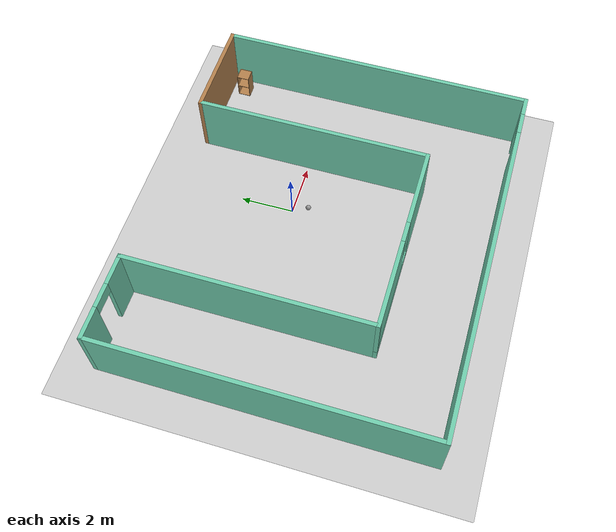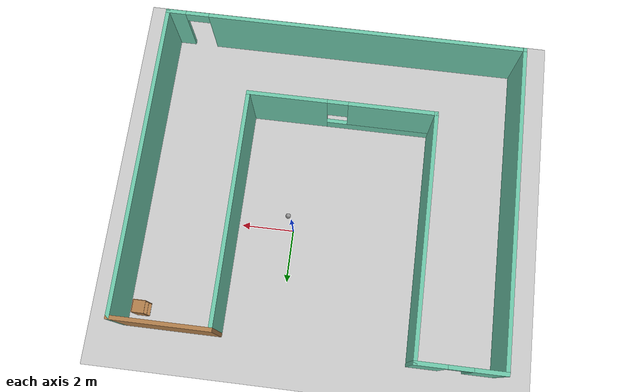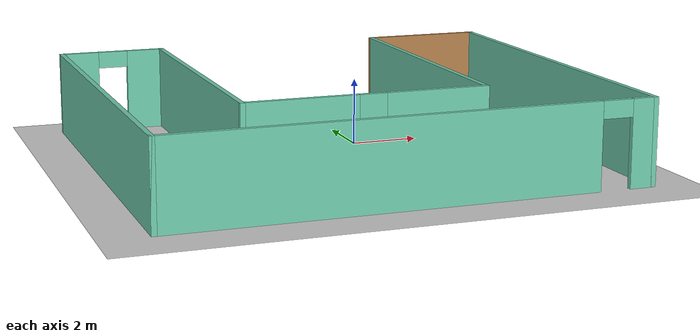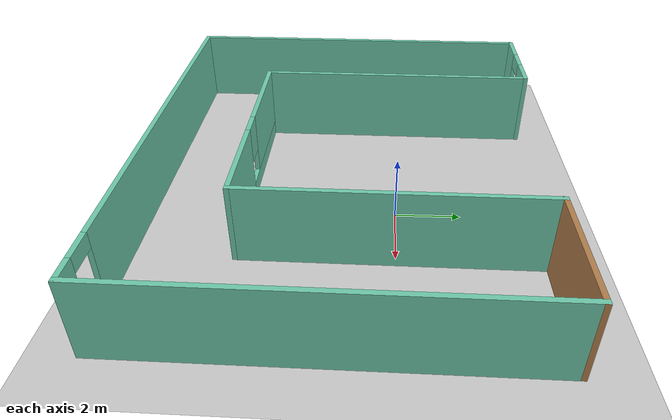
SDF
<sdf version="1.6">
 <world name="default">
  <plugin name="hello" filename="libhello.so"/>
  <light name="sun" type="directional">
   <pose>0 0 10 0 -0 0</pose>
   <diffuse>0.8 0.8 0.8 1</diffuse>
   <specular>0.2 0.2 0.2 1</specular>
   <attenuation>
    <range>1000</range>
    <constant>0.9</constant>
    <linear>0.01</linear>
    <quadratic>0.001</quadratic>
   </attenuation>
   <direction>-0.5 0.1 -0.9</direction>
  </light>
  <model name="ground_plane">
   <static>1</static>
   <link name="link">
    <collision name="collision">
     <geometry><plane><normal>0 0 1</normal><size>100 100</size></plane></geometry>
     <surface>
      <contact><collide_bitmask>65535</collide_bitmask></contact>
      <friction><ode><mu>100</mu><mu2>50</mu2></ode></friction>
     </surface>
    </collision>
    <visual name="visual">
     <cast_shadows>0</cast_shadows>
     <geometry><plane><normal>0 0 1</normal><size>100 100</size></plane></geometry>
     <material>
      <script><uri>file://media/materials/scripts/gazebo.material</uri><name>Gazebo/Grey</name></script>
     </material>
    </visual>
   </link>
  </model>
  <gravity>0 0 -9.8</gravity>
  <magnetic_field>6e-06 2.3e-05 -4.2e-05</magnetic_field>
  <atmosphere type="adiabatic"/>
  <physics name="default_physics" default="0" type="ode">
   <max_step_size>0.001</max_step_size>
   <real_time_factor>1</real_time_factor>
   <real_time_update_rate>1000</real_time_update_rate>
  </physics>
  <scene><ambient>0.4 0.4 0.4 1</ambient><background>0.7 0.7 0.7 1</background><shadows>1</shadows></scene>
  <spherical_coordinates>
   <surface_model>EARTH_WGS84</surface_model>
   <latitude_deg>0</latitude_deg>
   <longitude_deg>0</longitude_deg>
   <elevation>0</elevation>
   <heading_deg>0</heading_deg>
  </spherical_coordinates>
  <model name="mybuilding">
   <pose>-1.10318 -1.51522 0 0 -0 0</pose>
   <link name="Wall_1">
    <collision name="Wall_1_Collision">
     <geometry><box><size>12.25 0.15 2.5</size></box></geometry>
     <pose>0 0 1.25 0 -0 0</pose>
    </collision>
    <visual name="Wall_1_Visual">
     <pose>0 0 1.25 0 -0 0</pose>
     <geometry><box><size>12.25 0.15 2.5</size></box></geometry>
     <material>
      <script><uri>file://media/materials/scripts/gazebo.material</uri><name>Gazebo/Grey</name></script>
      <ambient>0.435294 0.796078 0.67451 1</ambient>
     </material>
     <meta><layer>0</layer></meta>
    </visual>
    <pose>-6.925 0 0 0 0 -1.5708</pose>
   </link>
   <link name="Wall_2">
    <pose>-1e-06 -6.05 0 0 -0 0</pose>
    <visual name="Wall_2_Visual_0">
     <pose>-0.838181 0 1.25 0 -0 0</pose>
     <geometry><box><size>12.3236 0.15 2.5</size></box></geometry>
     <material>
      <script><uri>file://media/materials/scripts/gazebo.material</uri><name>Gazebo/Grey</name></script>
      <ambient>0.435294 0.796078 0.67451 1</ambient>
     </material>
     <meta><layer>0</layer></meta>
    </visual>
    <collision name="Wall_2_Collision_0">
     <geometry><box><size>12.3236 0.15 2.5</size></box></geometry>
     <pose>-0.838181 0 1.25 0 -0 0</pose>
    </collision>
    <visual name="Wall_2_Visual_1">
     <pose>6.61182 0 1.25 0 -0 0</pose>
     <geometry><box><size>0.776362 0.15 2.5</size></box></geometry>
     <material>
      <script><uri>file://media/materials/scripts/gazebo.material</uri><name>Gazebo/Grey</name></script>
      <ambient>0.435294 0.796078 0.67451 1</ambient>
     </material>
     <meta><layer>0</layer></meta>
    </visual>
    <collision name="Wall_2_Collision_1">
     <geometry><box><size>0.776362 0.15 2.5</size></box></geometry>
     <pose>6.61182 0 1.25 0 -0 0</pose>
    </collision>
    <visual name="Wall_2_Visual_2">
     <pose>5.77364 0 2.25 0 -0 0</pose>
     <geometry><box><size>0.9 0.15 0.5</size></box></geometry>
     <material>
      <script><uri>file://media/materials/scripts/gazebo.material</uri><name>Gazebo/Grey</name></script>
      <ambient>0.435294 0.796078 0.67451 1</ambient>
     </material>
     <meta><layer>0</layer></meta>
    </visual>
    <collision name="Wall_2_Collision_2">
     <geometry><box><size>0.9 0.15 0.5</size></box></geometry>
     <pose>5.77364 0 2.25 0 -0 0</pose>
    </collision>
   </link>
   <link name="Wall_3">
    <collision name="Wall_3_Collision">
     <geometry><box><size>12 0.15 2.5</size></box></geometry>
     <pose>0 0 1.25 0 -0 0</pose>
    </collision>
    <visual name="Wall_3_Visual">
     <pose>0 0 1.25 0 -0 0</pose>
     <geometry><box><size>12 0.15 2.5</size></box></geometry>
     <material>
      <script><uri>file://media/materials/scripts/gazebo.material</uri><name>Gazebo/Grey</name></script>
      <ambient>0.435294 0.796078 0.67451 1</ambient>
     </material>
     <meta><layer>0</layer></meta>
    </visual>
    <pose>6.925 -0.125 0 0 -0 1.5708</pose>
   </link>
   <link name="Wall_4">
    <collision name="Wall_4_Collision">
     <geometry><box><size>3.75 0.15 2.5</size></box></geometry>
     <pose>0 0 1.25 0 -0 0</pose>
    </collision>
    <visual name="Wall_4_Visual">
     <pose>0 0 1.25 0 -0 0</pose>
     <geometry><box><size>3.75 0.15 2.5</size></box></geometry>
     <material>
      <script><uri>file://media/materials/scripts/gazebo.material</uri><name>Gazebo/Wood</name></script>
      <ambient>0.435294 0.796078 0.67451 1</ambient>
     </material>
     <meta><layer>0</layer></meta>
    </visual>
    <pose>5.125 5.8 0 0 -0 3.14159</pose>
   </link>
   <link name="Wall_5">
    <collision name="Wall_5_Collision">
     <geometry><box><size>9 0.15 2.5</size></box></geometry>
     <pose>0 0 1.25 0 -0 0</pose>
    </collision>
    <visual name="Wall_5_Visual">
     <pose>0 0 1.25 0 -0 0</pose>
     <geometry><box><size>9 0.15 2.5</size></box></geometry>
     <material>
      <script><uri>file://media/materials/scripts/gazebo.material</uri><name>Gazebo/Grey</name></script>
      <ambient>0.435294 0.796078 0.67451 1</ambient>
     </material>
     <meta><layer>0</layer></meta>
    </visual>
    <pose>3.325 1.375 0 0 0 -1.5708</pose>
   </link>
   <link name="Wall_6">
    <pose>-0.225 -3.05 0 0 -0 3.14159</pose>
    <visual name="Wall_6_Visual_0">
     <pose>-2.09198 0 1.25 0 -0 0</pose>
     <geometry><box><size>3.06604 0.15 2.5</size></box></geometry>
     <material>
      <script><uri>file://media/materials/scripts/gazebo.material</uri><name>Gazebo/Grey</name></script>
      <ambient>0.435294 0.796078 0.67451 1</ambient>
     </material>
     <meta><layer>0</layer></meta>
    </visual>
    <collision name="Wall_6_Collision_0">
     <geometry><box><size>3.06604 0.15 2.5</size></box></geometry>
     <pose>-2.09198 0 1.25 0 -0 0</pose>
    </collision>
    <visual name="Wall_6_Visual_1">
     <pose>1.53302 0 0.25 0 -0 0</pose>
     <geometry><box><size>4.18396 0.15 0.5</size></box></geometry>
     <material>
      <script><uri>file://media/materials/scripts/gazebo.material</uri><name>Gazebo/Grey</name></script>
      <ambient>0.435294 0.796078 0.67451 1</ambient>
     </material>
     <meta><layer>0</layer></meta>
    </visual>
    <collision name="Wall_6_Collision_1">
     <geometry><box><size>4.18396 0.15 0.5</size></box></geometry>
     <pose>1.53302 0 0.25 0 -0 0</pose>
    </collision>
    <visual name="Wall_6_Visual_2">
     <pose>1.93302 0 1.5 0 -0 0</pose>
     <geometry><box><size>3.38396 0.15 2</size></box></geometry>
     <material>
      <script><uri>file://media/materials/scripts/gazebo.material</uri><name>Gazebo/Grey</name></script>
      <ambient>0.435294 0.796078 0.67451 1</ambient>
     </material>
     <meta><layer>0</layer></meta>
    </visual>
    <collision name="Wall_6_Collision_2">
     <geometry><box><size>3.38396 0.15 2</size></box></geometry>
     <pose>1.93302 0 1.5 0 -0 0</pose>
    </collision>
    <visual name="Wall_6_Visual_3">
     <pose>-0.158962 0 1.9 0 -0 0</pose>
     <geometry><box><size>0.8 0.15 1.2</size></box></geometry>
     <material>
      <script><uri>file://media/materials/scripts/gazebo.material</uri><name>Gazebo/Grey</name></script>
      <ambient>0.435294 0.796078 0.67451 1</ambient>
     </material>
     <meta><layer>0</layer></meta>
    </visual>
    <collision name="Wall_6_Collision_3">
     <geometry><box><size>0.8 0.15 1.2</size></box></geometry>
     <pose>-0.158962 0 1.9 0 -0 0</pose>
    </collision>
   </link>
   <link name="Wall_7">
    <collision name="Wall_7_Collision">
     <geometry><box><size>9.25 0.15 2.5</size></box></geometry>
     <pose>0 0 1.25 0 -0 0</pose>
    </collision>
    <visual name="Wall_7_Visual">
     <pose>0 0 1.25 0 -0 0</pose>
     <geometry><box><size>9.25 0.15 2.5</size></box></geometry>
     <material>
      <script><uri>file://media/materials/scripts/gazebo.material</uri><name>Gazebo/Grey</name></script>
      <ambient>0.435294 0.796078 0.67451 1</ambient>
     </material>
     <meta><layer>0</layer></meta>
    </visual>
    <pose>-3.775 1.5 0 0 -0 1.5708</pose>
   </link>
   <link name="Wall_8">
    <pose>-5.35 6.05 0 0 0 -3.14159</pose>
    <visual name="Wall_8_Visual_0">
     <pose>-1.05357 0 1.25 0 -0 0</pose>
     <geometry><box><size>1.19285 0.15 2.5</size></box></geometry>
     <material>
      <script><uri>file://media/materials/scripts/gazebo.material</uri><name>Gazebo/Grey</name></script>
      <ambient>0.435294 0.796078 0.67451 1</ambient>
     </material>
     <meta><layer>0</layer></meta>
    </visual>
    <collision name="Wall_8_Collision_0">
     <geometry><box><size>1.19285 0.15 2.5</size></box></geometry>
     <pose>-1.05357 0 1.25 0 -0 0</pose>
    </collision>
    <visual name="Wall_8_Visual_1">
     <pose>1.04643 0 1.25 0 -0 0</pose>
     <geometry><box><size>1.20715 0.15 2.5</size></box></geometry>
     <material>
      <script><uri>file://media/materials/scripts/gazebo.material</uri><name>Gazebo/Grey</name></script>
      <ambient>0.435294 0.796078 0.67451 1</ambient>
     </material>
     <meta><layer>0</layer></meta>
    </visual>
    <collision name="Wall_8_Collision_1">
     <geometry><box><size>1.20715 0.15 2.5</size></box></geometry>
     <pose>1.04643 0 1.25 0 -0 0</pose>
    </collision>
    <visual name="Wall_8_Visual_2">
     <pose>-0.007148 0 2.25 0 -0 0</pose>
     <geometry><box><size>0.9 0.15 0.5</size></box></geometry>
     <material>
      <script><uri>file://media/materials/scripts/gazebo.material</uri><name>Gazebo/Grey</name></script>
      <ambient>0.435294 0.796078 0.67451 1</ambient>
     </material>
     <meta><layer>0</layer></meta>
    </visual>
    <collision name="Wall_8_Collision_2">
     <geometry><box><size>0.9 0.15 0.5</size></box></geometry>
     <pose>-0.007148 0 2.25 0 -0 0</pose>
    </collision>
   </link>
   <static>1</static>
  </model>
  <model name="cabinet">
   <static>1</static>
   <link name="cabinet_bottom_plate">
    <inertial>
     <pose>0 0 -1 0 -0 0</pose>
     <inertia><ixx>2.05</ixx><ixy>0</ixy><ixz>0</ixz><iyy>2.05</iyy><iyz>0</iyz><izz>2.05</izz></inertia>
     <mass>25</mass>
    </inertial>
    <collision name="cabinet_bottom_plate_geom">
     <pose>0 0 0.01 0 -0 0</pose>
     <geometry><box><size>0.45 0.45 0.02</size></box></geometry>
    </collision>
    <visual name="cabinet_bottom_plate_geom_visual">
     <pose>0 0 0.01 0 -0 0</pose>
     <geometry><box><size>0.45 0.45 0.02</size></box></geometry>
     <material>
      <script><uri>file://media/materials/scripts/gazebo.material</uri><name>Gazebo/Wood</name></script>
     </material>
    </visual>
    <collision name="cabinet_bottom_plate_geom_cabinet_back_plate">
     <pose>0.235 0 0.51 0 -0 0</pose>
     <geometry><box><size>0.02 0.45 1.02</size></box></geometry>
    </collision>
    <visual name="cabinet_bottom_plate_geom_cabinet_back_plate_visual">
     <pose>0.235 0 0.51 0 -0 0</pose>
     <geometry><box><size>0.02 0.45 1.02</size></box></geometry>
     <material>
      <script><uri>file://media/materials/scripts/gazebo.material</uri><name>Gazebo/Wood</name></script>
     </material>
    </visual>
    <collision name="cabinet_bottom_plate_geom_cabinet_left_plate">
     <pose>0 0.235 0.51 0 -0 0</pose>
     <geometry><box><size>0.45 0.02 1.02</size></box></geometry>
    </collision>
    <visual name="cabinet_bottom_plate_geom_cabinet_left_plate_visual">
     <pose>0 0.235 0.51 0 -0 0</pose>
     <geometry><box><size>0.45 0.02 1.02</size></box></geometry>
     <material>
      <script><uri>file://media/materials/scripts/gazebo.material</uri><name>Gazebo/Wood</name></script>
     </material>
    </visual>
    <collision name="cabinet_bottom_plate_geom_cabinet_middle_plate">
     <pose>0 0 0.51 0 -0 0</pose>
     <geometry><box><size>0.45 0.45 0.02</size></box></geometry>
    </collision>
    <visual name="cabinet_bottom_plate_geom_cabinet_middle_plate_visual">
     <pose>0 0 0.51 0 -0 0</pose>
     <geometry><box><size>0.45 0.45 0.02</size></box></geometry>
     <material>
      <script><uri>file://media/materials/scripts/gazebo.material</uri><name>Gazebo/Wood</name></script>
     </material>
    </visual>
    <collision name="cabinet_bottom_plate_geom_cabinet_right_plate">
     <pose>0 -0.235 0.51 0 -0 0</pose>
     <geometry><box><size>0.45 0.02 1.02</size></box></geometry>
    </collision>
    <visual name="cabinet_bottom_plate_geom_cabinet_right_plate_visual">
     <pose>0 -0.235 0.51 0 -0 0</pose>
     <geometry><box><size>0.45 0.02 1.02</size></box></geometry>
     <material>
      <script><uri>file://media/materials/scripts/gazebo.material</uri><name>Gazebo/Wood</name></script>
     </material>
    </visual>
    <collision name="cabinet_bottom_plate_geom_cabinet_top_plate">
     <pose>0 0 1.01 0 -0 0</pose>
     <geometry><box><size>0.45 0.45 0.02</size></box></geometry>
    </collision>
    <visual name="cabinet_bottom_plate_geom_cabinet_top_plate_visual">
     <pose>0 0 1.01 0 -0 0</pose>
     <geometry><box><size>0.45 0.45 0.02</size></box></geometry>
     <material>
      <script><uri>file://media/materials/scripts/gazebo.material</uri><name>Gazebo/Wood</name></script>
     </material>
    </visual>
   </link>
   <pose>5.2015 3.67639 0 0 -0 0</pose>
  </model>
  <model name="my_ball">
   <link name="link_0">
    <inertial>
     <mass>1</mass>
     <inertia><ixx>0.1</ixx><ixy>0</ixy><ixz>0</ixz><iyy>0.1</iyy><iyz>0</iyz><izz>0.1</izz></inertia>
    </inertial>
    <visual name="visual">
     <geometry><sphere><radius>0.1</radius></sphere></geometry>
     <material>
      <lighting>1</lighting>
      <script><uri>file://media/materials/scripts/gazebo.material</uri><name>Gazebo/Grey</name></script>
      <shader type="pixel"><normal_map>__default__</normal_map></shader>
      <ambient>1 1 1 1</ambient>
      <diffuse>1 1 1 1</diffuse>
      <specular>1 1 1 1</specular>
      <emissive>1 1 1 1</emissive>
     </material>
    </visual>
    <collision name="collision">
     <geometry><sphere><radius>0.1</radius></sphere></geometry>
     <surface>
      <friction>
       <ode><mu>1</mu><mu2>1</mu2><fdir1>0 0 0</fdir1><slip1>0</slip1><slip2>0</slip2></ode>
       <torsional>
        <coefficient>1</coefficient>
        <patch_radius>0</patch_radius>
        <surface_radius>0</surface_radius>
        <use_patch_radius>1</use_patch_radius>
        <ode><slip>0</slip></ode>
       </torsional>
      </friction>
      <bounce><restitution_coefficient>0</restitution_coefficient><threshold>1e+06</threshold></bounce>
      <contact>
       <collide_without_contact>0</collide_without_contact>
       <collide_without_contact_bitmask>1</collide_without_contact_bitmask>
       <collide_bitmask>1</collide_bitmask>
       <ode>
        <soft_cfm>0</soft_cfm>
        <soft_erp>0.2</soft_erp>
        <kp>1e+13</kp>
        <kd>1</kd>
        <max_vel>0.01</max_vel>
        <min_depth>0</min_depth>
       </ode>
       <bullet>
        <split_impulse>1</split_impulse>
        <split_impulse_penetration_threshold>-0.01</split_impulse_penetration_threshold>
        <soft_cfm>0</soft_cfm>
        <soft_erp>0.2</soft_erp>
        <kp>1e+13</kp>
        <kd>1</kd>
       </bullet>
      </contact>
     </surface>
    </collision>
   </link>
   <static>0</static>
   <pose>0.285788 -0.56172 0.1 0 -0 0</pose>
  </model>
 </world>
</sdf>
